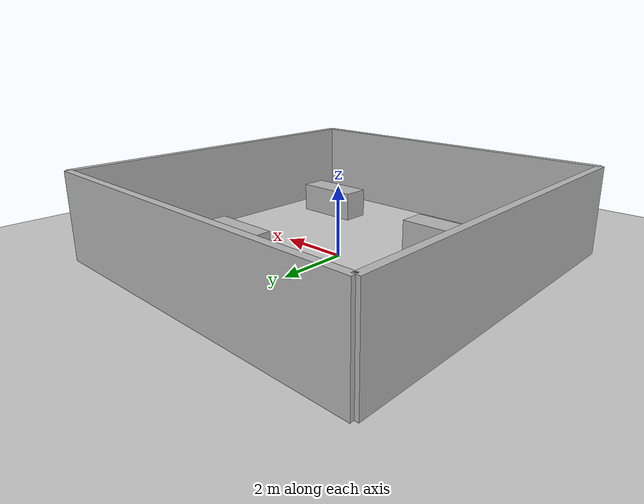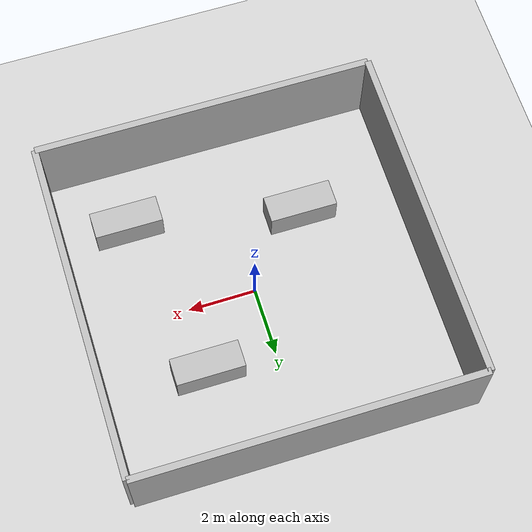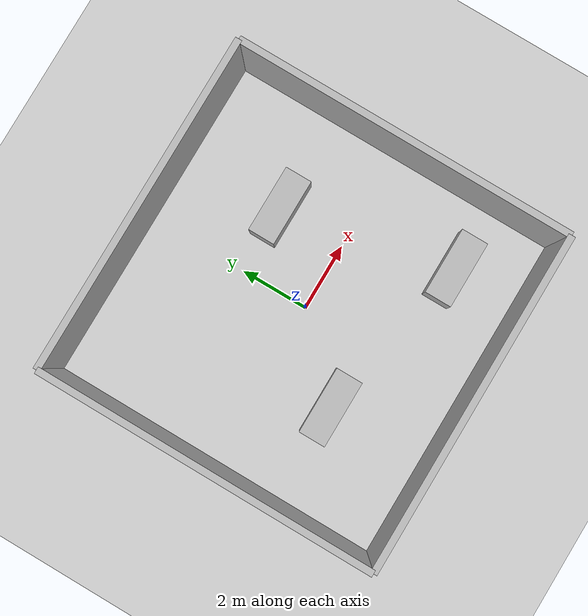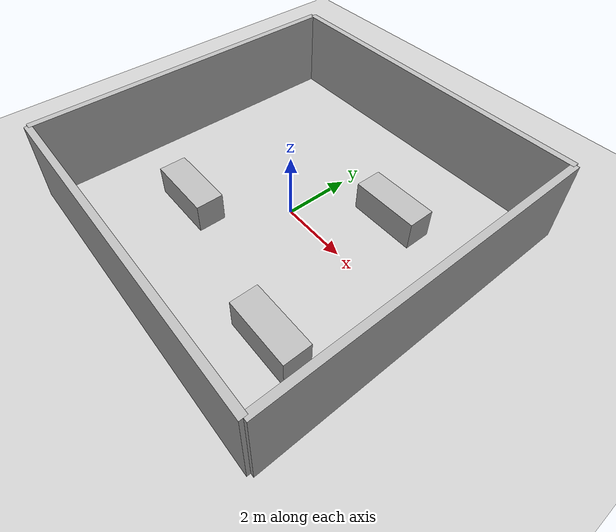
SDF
<?xml version="1.0" ?>
<sdf version="1.6">
  <world name="lab_room">
    <include><uri>model://sun</uri></include>
    <include><uri>model://ground_plane</uri></include>

    <!-- North Wall-->
    <model name = "wall_n"><static>true</static>
      <link name = "1">
        <collision name = "c"><geometry><box><size>10 0.2 2.5</size></box></geometry></collision>
        <visual name = "v"><geometry><box><size>10 0.2 2.5</size></box></geometry></visual>
      </link><pose>0 5 1.25 0 0 0</pose>
    </model>

        <!-- South Wall need to change it ya-->
    <model name = "wall_s"><static>true</static>
      <link name = "1">
        <collision name = "c"><geometry><box><size>10 0.2 2.5</size></box></geometry></collision>
        <visual name = "v"><geometry><box><size>10 0.2 2.5</size></box></geometry></visual>
      </link><pose>0 -5 1.25 0 0 0</pose>
    </model>

        <!-- East Wall need to change it ya-->
    <model name = "wall_e"><static>true</static>
      <link name = "1">
        <collision name = "c"><geometry><box><size>0.2 10 2.5</size></box></geometry></collision>
        <visual name = "v"><geometry><box><size>0.2 10 2.5</size></box></geometry></visual>
      </link><pose>5 0 1.25 0 0 0</pose>
    </model>

        <!-- West Wall need to change it ya-->
    <model name = "wall_w"><static>true</static>
      <link name = "1">
        <collision name = "c"><geometry><box><size>0.2 10 2.5</size></box></geometry></collision>
        <visual name = "v"><geometry><box><size>0.2 10 2.5</size></box></geometry></visual>
      </link><pose>-5 0 1.25 0 0 0</pose>
    </model>

    <model name = "bench1"><static>true</static>
      <link name = "1">
        <collision name = "c"><geometry><box><size>2 0.8 0.9 </size></box></geometry></collision>
        <visual name = "v"><geometry><box><size>2 0.8 0.9 </size></box></geometry></visual>
      </link><pose>2 2 0.45 0 0 0</pose>
    </model>

<!-- bench 2 needs to be update -->
    <model name = "bench2"><static>true</static>
      <link name = "1">
        <collision name = "c"><geometry><box><size>2 0.8 0.9 </size></box></geometry></collision>
        <visual name = "v"><geometry><box><size>2 0.8 0.9 </size></box></geometry></visual>
      </link><pose>-2 -2 0.45 0 0 0</pose>
    </model>

    <!-- bench 3 needs to be update -->
    <model name = "bench3"><static>true</static>
      <link name = "1">
        <collision name = "c"><geometry><box><size>2 0.8 0.9 </size></box></geometry></collision>
        <visual name = "v"><geometry><box><size>2 0.8 0.9 </size></box></geometry></visual>
      </link><pose>3 -3 0.45 0 0 0</pose>
    </model>
  </world>
</sdf>
